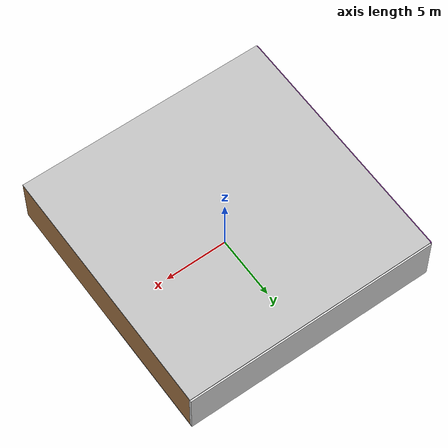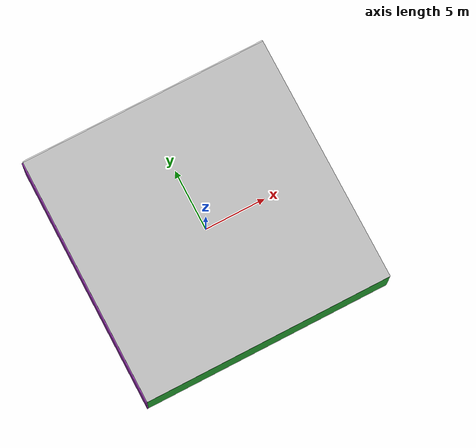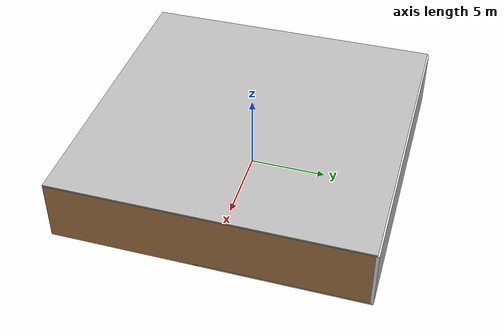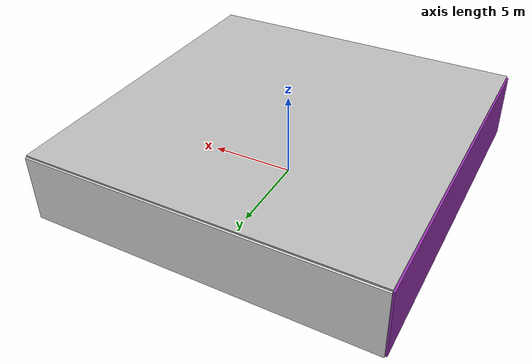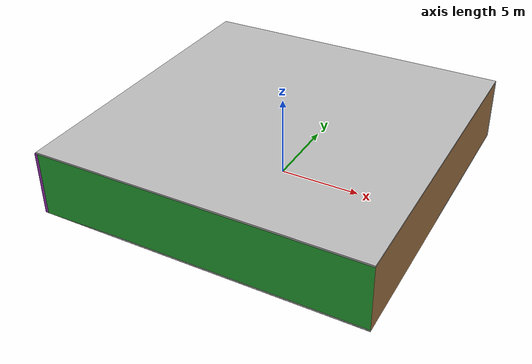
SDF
<sdf version="1.4">
 <world name="default">
  <physics type="ode">
   <max_step_size>0.001</max_step_size>
   <real_time_factor>1</real_time_factor>
   <real_time_update_rate>1000</real_time_update_rate>
   <gravity>0 0 -9.8</gravity>
  </physics>
  <scene><ambient>0.4 0.4 0.4 1</ambient><background>0.7 0.7 0.7 1</background><shadows>1</shadows></scene>
  <model name="Surrounding">
   <static>1</static>
   <link name="Ceiling">
    <collision name="Ceiling_Collision"><geometry><box><size>20 20 0.1</size></box></geometry></collision>
    <visual name="Ceiling_Visual">
     <geometry><box><size>20 20 0.1</size></box></geometry>
     <material>
      <script><uri>file://media/materials/scripts/gazebo.material</uri><name>Gazebo/JointAnchor</name></script>
     </material>
    </visual>
    <pose>0 0 4.05 0 0 0</pose>
   </link>
   <link name="Wall_South">
    <collision name="Wall_South_Collision">
     <geometry><box><size>20 0 4</size></box></geometry>
     <pose>0 0 2 0 -0 0</pose>
    </collision>
    <visual name="Wall_South_Visual">
     <pose>0 0 2 0 -0 0</pose>
     <geometry><box><size>20 0 4</size></box></geometry>
     <material>
      <script><uri>file://media/materials/scripts/gazebo.material</uri><name>Gazebo/Green</name></script>
     </material>
    </visual>
    <velocity_decay><linear>0</linear><angular>0</angular></velocity_decay>
    <pose>0 -10 0 0 -0 0</pose>
   </link>
   <link name="Wall_East">
    <collision name="Wall_21_Collision">
     <geometry><box><size>20 0 4</size></box></geometry>
     <pose>0 0 2 0 -0 0</pose>
    </collision>
    <visual name="Wall_21_Visual">
     <pose>0 0 2 0 -0 0</pose>
     <geometry><box><size>20 0 4</size></box></geometry>
     <material>
      <script><uri>file://media/materials/scripts/gazebo.material</uri><name>Gazebo/Wood</name></script>
     </material>
    </visual>
    <velocity_decay><linear>0</linear><angular>0</angular></velocity_decay>
    <pose>10 0 0 0 -0 1.5708</pose>
   </link>
   <link name="Wall_North">
    <collision name="Wall_22_Collision">
     <geometry><box><size>20 0.2 4</size></box></geometry>
     <pose>0 0 2 0 -0 0</pose>
    </collision>
    <visual name="Wall_22_Visual">
     <pose>0 0 2 0 -0 0</pose>
     <geometry><box><size>20 0.2 4</size></box></geometry>
     <material>
      <script><uri>file://media/materials/scripts/gazebo.material</uri><name>Gazebo/White</name></script>
     </material>
    </visual>
    <velocity_decay><linear>0</linear><angular>0</angular></velocity_decay>
    <pose>0 10 0 0 -0 0</pose>
   </link>
   <link name="Wall_West">
    <collision name="Wall_23_Collision">
     <geometry><box><size>20 0.2 4</size></box></geometry>
     <pose>0 0 2 0 -0 0</pose>
    </collision>
    <visual name="Wall_23_Visual">
     <pose>0 0 2 0 -0 0</pose>
     <geometry><box><size>20 0.2 4</size></box></geometry>
     <material>
      <script><uri>file://media/materials/scripts/gazebo.material</uri><name>Gazebo/Purple</name></script>
     </material>
    </visual>
    <velocity_decay><linear>0</linear><angular>0</angular></velocity_decay>
    <pose>-10 0 0 0 0 -1.5708</pose>
   </link>
   <link name="Ground_link">
    <collision name="collision">
     <pose>0 0 .05 0 -0 0</pose>
     <geometry><box><size>20 20 0.1</size></box></geometry>
    </collision>
    <visual name="visual">
     <pose>0 0 .05 0 -0 0</pose>
     <geometry><box><size>20 20 0.1</size></box></geometry>
     <material>
      <script><uri>file://media/materials/scripts/gazebo.material</uri><name>Gazebo/JointAnchor</name></script>
     </material>
    </visual>
   </link>
   <static>1</static>
  </model>
  <spherical_coordinates>
   <surface_model>EARTH_WGS84</surface_model>
   <latitude_deg>0</latitude_deg>
   <longitude_deg>0</longitude_deg>
   <elevation>0</elevation>
   <heading_deg>0</heading_deg>
  </spherical_coordinates>
  <light name="lightball_0" type="diffuse">
   <diffuse>0.8 0.8 0.8 1</diffuse>
   <specular>0.2 0.2 0.2 1</specular>
   <attenuation>
    <range>100</range>
    <constant>0.7</constant>
    <linear>0.01</linear>
    <quadratic>0.001</quadratic>
   </attenuation>
   <direction>-0.5 0.1 -0.9</direction>
   <pose>-1.41606639781 1.06152080435 1.14601231082 0 0 0</pose>
  </light>
  <light name="lightball_1" type="diffuse">
   <diffuse>0.8 0.8 0.8 1</diffuse>
   <specular>0.2 0.2 0.2 1</specular>
   <attenuation>
    <range>100</range>
    <constant>0.7</constant>
    <linear>0.01</linear>
    <quadratic>0.001</quadratic>
   </attenuation>
   <direction>-0.5 0.1 -0.9</direction>
   <pose>-3.29293919716 9.99536786271 2.25200923701 0 0 0</pose>
  </light>
  <light name="lightball_2" type="diffuse">
   <diffuse>0.8 0.8 0.8 1</diffuse>
   <specular>0.2 0.2 0.2 1</specular>
   <attenuation>
    <range>100</range>
    <constant>0.7</constant>
    <linear>0.01</linear>
    <quadratic>0.001</quadratic>
   </attenuation>
   <direction>-0.5 0.1 -0.9</direction>
   <pose>-1.68665808027 -1.77604065994 0.847257331104 0 0 0</pose>
  </light>
  <light name="lightball_3" type="diffuse">
   <diffuse>0.8 0.8 0.8 1</diffuse>
   <specular>0.2 0.2 0.2 1</specular>
   <attenuation>
    <range>100</range>
    <constant>0.7</constant>
    <linear>0.01</linear>
    <quadratic>0.001</quadratic>
   </attenuation>
   <direction>-0.5 0.1 -0.9</direction>
   <pose>4.16908392908 1.55869762467 2.99426584979 0 0 0</pose>
  </light>
  <light name="lightball_4" type="diffuse">
   <diffuse>0.8 0.8 0.8 1</diffuse>
   <specular>0.2 0.2 0.2 1</specular>
   <attenuation>
    <range>100</range>
    <constant>0.7</constant>
    <linear>0.01</linear>
    <quadratic>0.001</quadratic>
   </attenuation>
   <direction>-0.5 0.1 -0.9</direction>
   <pose>-4.06244722798 -8.93843506843 1.03178399602 0 0 0</pose>
  </light>
  <light name="lightball_5" type="diffuse">
   <diffuse>0.8 0.8 0.8 1</diffuse>
   <specular>0.2 0.2 0.2 1</specular>
   <attenuation>
    <range>100</range>
    <constant>0.7</constant>
    <linear>0.01</linear>
    <quadratic>0.001</quadratic>
   </attenuation>
   <direction>-0.5 0.1 -0.9</direction>
   <pose>-0.553052160941 8.1739300108 1.40095049936 0 0 0</pose>
  </light>
  <light name="lightball_6" type="diffuse">
   <diffuse>0.8 0.8 0.8 1</diffuse>
   <specular>0.2 0.2 0.2 1</specular>
   <attenuation>
    <range>100</range>
    <constant>0.7</constant>
    <linear>0.01</linear>
    <quadratic>0.001</quadratic>
   </attenuation>
   <direction>-0.5 0.1 -0.9</direction>
   <pose>3.96394285085 -0.16955552041 2.11760271023 0 0 0</pose>
  </light>
  <light name="lightball_7" type="diffuse">
   <diffuse>0.8 0.8 0.8 1</diffuse>
   <specular>0.2 0.2 0.2 1</specular>
   <attenuation>
    <range>100</range>
    <constant>0.7</constant>
    <linear>0.01</linear>
    <quadratic>0.001</quadratic>
   </attenuation>
   <direction>-0.5 0.1 -0.9</direction>
   <pose>0.89469959637 -8.7292750096 2.71045069942 0 0 0</pose>
  </light>
  <light name="lightball_8" type="diffuse">
   <diffuse>0.8 0.8 0.8 1</diffuse>
   <specular>0.2 0.2 0.2 1</specular>
   <attenuation>
    <range>100</range>
    <constant>0.7</constant>
    <linear>0.01</linear>
    <quadratic>0.001</quadratic>
   </attenuation>
   <direction>-0.5 0.1 -0.9</direction>
   <pose>-2.93259033414 2.74405306902 1.62265416391 0 0 0</pose>
  </light>
  <light name="lightball_9" type="diffuse">
   <diffuse>0.8 0.8 0.8 1</diffuse>
   <specular>0.2 0.2 0.2 1</specular>
   <attenuation>
    <range>100</range>
    <constant>0.7</constant>
    <linear>0.01</linear>
    <quadratic>0.001</quadratic>
   </attenuation>
   <direction>-0.5 0.1 -0.9</direction>
   <pose>8.4313426033 -9.77322476062 2.7869657276 0 0 0</pose>
  </light>
  <light name="lightball_10" type="diffuse">
   <diffuse>0.8 0.8 0.8 1</diffuse>
   <specular>0.2 0.2 0.2 1</specular>
   <attenuation>
    <range>100</range>
    <constant>0.7</constant>
    <linear>0.01</linear>
    <quadratic>0.001</quadratic>
   </attenuation>
   <direction>-0.5 0.1 -0.9</direction>
   <pose>-6.23884763043 -9.00354415151 1.06100270972 0 0 0</pose>
  </light>
  <light name="lightball_11" type="diffuse">
   <diffuse>0.8 0.8 0.8 1</diffuse>
   <specular>0.2 0.2 0.2 1</specular>
   <attenuation>
    <range>100</range>
    <constant>0.7</constant>
    <linear>0.01</linear>
    <quadratic>0.001</quadratic>
   </attenuation>
   <direction>-0.5 0.1 -0.9</direction>
   <pose>-1.78190015263 7.41667372129 2.35987358632 0 0 0</pose>
  </light>
  <light name="lightball_12" type="diffuse">
   <diffuse>0.8 0.8 0.8 1</diffuse>
   <specular>0.2 0.2 0.2 1</specular>
   <attenuation>
    <range>100</range>
    <constant>0.7</constant>
    <linear>0.01</linear>
    <quadratic>0.001</quadratic>
   </attenuation>
   <direction>-0.5 0.1 -0.9</direction>
   <pose>9.65774477305 1.5409642914 3.56039585749 0 0 0</pose>
  </light>
  <include>
   <uri>model://robocup_3Dsim_goal</uri>
   <pose>-8.09182480473 -6.89117131608 0 0 0 2.47394327043</pose>
  </include>
  <include><uri>model://table</uri><pose>-7.7100097285 5.22318646012 0 0 0 0.310061133683</pose></include>
  <include>
   <uri>model://textured_shapes</uri>
   <pose>-0.345799730983 -3.59118144949 0 0 0 1.66478315863</pose>
  </include>
  <include>
   <uri>model://construction_cone</uri>
   <pose>-2.51767001446 7.38733069003 0 0 0 2.8801424874</pose>
  </include>
 </world>
</sdf>

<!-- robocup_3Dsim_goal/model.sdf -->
<sdf version="1.5">
  <model name="robocup_3d_goal">
    <static>true</static>
    <link name="left_post">
      <pose>0 1.05 0.45 0 0 0</pose>
      <collision name="collision">
        <geometry>
          <cylinder>
            <radius>0.05</radius>
            <length>0.9</length>
          </cylinder>
        </geometry>
      </collision>
      <visual name="visual">
        <geometry>
          <cylinder>
            <radius>0.05</radius>
            <length>0.9</length>
          </cylinder>
        </geometry>
        <material>
          <script>
            <uri>file://media/materials/scripts/gazebo.material</uri>
            <name>Gazebo/ZincYellow</name>
          </script>
        </material>
      </visual>
    </link>
    <link name="left_support_horiz_lower">
      <pose>0.30 1.05 0.01 0 0 0</pose>
      <collision name="collision">
        <geometry>
          <box>
            <size>0.50 0.02 0.02</size>
          </box>
        </geometry>
      </collision>
      <visual name="visual">
        <geometry>
          <box>
            <size>0.50 0.02 0.02</size>
          </box>
        </geometry>
        <material>
          <script>
            <uri>file://media/materials/scripts/gazebo.material</uri>
            <name>Gazebo/White</name>
          </script>
        </material>
      </visual>
    </link>
    <link name="left_support_horiz_upper">
      <pose>0.30 1.05 0.79 0 0 0</pose>
      <collision name="collision">
        <geometry>
          <box>
            <size>0.50 0.02 0.02</size>
          </box>
        </geometry>
      </collision>
      <visual name="visual">
        <geometry>
          <box>
            <size>0.50 0.02 0.02</size>
          </box>
        </geometry>
        <material>
          <script>
            <uri>file://media/materials/scripts/gazebo.material</uri>
            <name>Gazebo/White</name>
          </script>
        </material>
      </visual>
    </link>
    <link name="left_support_vertical">
      <pose>0.56 1.05 0.4 0 1.5708 0</pose>
      <collision name="collision">
        <geometry>
          <box>
            <size>0.80 0.02 0.02</size>
          </box>
        </geometry>
      </collision>
      <visual name="visual">
        <geometry>
          <box>
            <size>0.80 0.02 0.02</size>
          </box>
        </geometry>
        <material>
          <script>
            <uri>file://media/materials/scripts/gazebo.material</uri>
            <name>Gazebo/White</name>
          </script>
        </material>
      </visual>
    </link>
    <link name="right_support_horiz_lower">
      <pose>0.30 -1.05 0.01 0 0 0</pose>
      <collision name="collision">
        <geometry>
          <box>
            <size>0.50 0.02 0.02</size>
          </box>
        </geometry>
      </collision>
      <visual name="visual">
        <geometry>
          <box>
            <size>0.50 0.02 0.02</size>
          </box>
        </geometry>
        <material>
          <script>
            <uri>file://media/materials/scripts/gazebo.material</uri>
            <name>Gazebo/White</name>
          </script>
        </material>
      </visual>
    </link>
    <link name="right_support_horiz_upper">
      <pose>0.30 -1.05 0.79 0 0 0</pose>
      <collision name="collision">
        <geometry>
          <box>
            <size>0.50 0.02 0.02</size>
          </box>
        </geometry>
      </collision>
      <visual name="visual">
        <geometry>
          <box>
            <size>0.50 0.02 0.02</size>
          </box>
        </geometry>
        <material>
          <script>
            <uri>file://media/materials/scripts/gazebo.material</uri>
            <name>Gazebo/White</name>
          </script>
        </material>
      </visual>
    </link>
    <link name="right_support_vertical">
      <pose>0.56 -1.05 0.4 0 1.5708 0</pose>
      <collision name="collision">
        <geometry>
          <box>
            <size>0.80 0.02 0.02</size>
          </box>
        </geometry>
      </collision>
      <visual name="visual">
        <geometry>
          <box>
            <size>0.80 0.02 0.02</size>
          </box>
        </geometry>
        <material>
          <script>
            <uri>file://media/materials/scripts/gazebo.material</uri>
            <name>Gazebo/White</name>
          </script>
        </material>
      </visual>
    </link>
    <link name="center_support_horiz_lower">
      <pose>0.56 0 0.01 0 1.5708 0</pose>
      <collision name="collision">
        <geometry>
          <box>
            <size>0.02 2.08 0.02</size>
          </box>
        </geometry>
      </collision>
      <visual name="visual">
        <geometry>
          <box>
            <size>0.02 2.08 0.02</size>
          </box>
        </geometry>
        <material>
          <script>
            <uri>file://media/materials/scripts/gazebo.material</uri>
            <name>Gazebo/White</name>
          </script>
        </material>
      </visual>
    </link>
    <link name="center_support_horiz_upper">
      <pose>0.56 0 0.79 0 1.5708 0</pose>
      <collision name="collision">
        <geometry>
          <box>
            <size>0.02 2.08 0.02</size>
          </box>
        </geometry>
      </collision>
      <visual name="visual">
        <geometry>
          <box>
            <size>0.02 2.08 0.02</size>
          </box>
        </geometry>
        <material>
          <script>
            <uri>file://media/materials/scripts/gazebo.material</uri>
            <name>Gazebo/White</name>
          </script>
        </material>
      </visual>
    </link>
    <link name="right_post">
      <pose>0 -1.05 0.45 0 0 0</pose>
      <collision name="collision">
        <geometry>
          <cylinder>
            <radius>0.05</radius>
            <length>0.9</length>
          </cylinder>
        </geometry>
      </collision>
      <visual name="visual">
        <geometry>
          <cylinder>
            <radius>0.05</radius>
            <length>0.9</length>
          </cylinder>
        </geometry>
        <material>
          <script>
            <uri>file://media/materials/scripts/gazebo.material</uri>
            <name>Gazebo/ZincYellow</name>
          </script>
        </material>
      </visual>
    </link>
    <link name="crossbar">
      <pose>0 0 0.85 1.57 1.57 0</pose>
      <collision name="collision">
        <geometry>
          <cylinder>
            <radius>0.05</radius>
            <length>2.0</length>
          </cylinder>
        </geometry>
      </collision>
      <visual name="visual">
        <geometry>
          <cylinder>
            <radius>0.05</radius>
            <length>2.0</length>
          </cylinder>
        </geometry>
        <material>
          <script>
            <uri>file://media/materials/scripts/gazebo.material</uri>
            <name>Gazebo/ZincYellow</name>
          </script>
        </material>
      </visual>
    </link>
    <link name="center_net">
      <pose>0.56 0 0.40 0 0 0</pose>
      <collision name="collision">
        <geometry>
          <box>
            <size>0.01 2.1 0.80</size>
          </box>
        </geometry>
      </collision>
      <visual name="visual">
        <geometry>
          <box>
            <size>0.01 2.1 0.80</size>
          </box>
        </geometry>
        <material>
          <script>
            <uri>model://../model_source/models/robocup09_spl_field/materials/scripts/</uri>
            <uri>model://../model_source/models/robocup09_spl_field/materials/textures/</uri>
            <name>RoboCup/Net</name>
          </script>
        </material>
      </visual>
    </link>
    <link name="left_net">
      <pose>0.30 1.05 0.40 0 0 0</pose>
      <collision name="collision">
        <geometry>
          <box>
            <size>0.50 0.01 0.76</size>
          </box>
        </geometry>
      </collision>
      <visual name="visual">
        <geometry>
          <box>
            <size>0.50 0.01 0.76</size>
          </box>
        </geometry>
        <material>
          <script>
            <uri>model://../model_source/models/robocup09_spl_field/materials/scripts/</uri>
            <uri>model://../model_source/models/robocup09_spl_field/materials/textures/</uri>
            <name>RoboCup/Net</name>
          </script>
        </material>
      </visual>
    </link>
    <link name="right_net">
      <pose>0.30 -1.05 0.40 0 0 0</pose>
      <collision name="collision">
        <geometry>
          <box>
            <size>0.50 0.01 0.76</size>
          </box>
        </geometry>
      </collision>
      <visual name="visual">
        <geometry>
          <box>
            <size>0.50 0.01 0.76</size>
          </box>
        </geometry>
        <material>
          <script>
            <uri>model://../model_source/models/robocup09_spl_field/materials/scripts/</uri>
            <uri>model://../model_source/models/robocup09_spl_field/materials/textures/</uri>
            <name>RoboCup/Net</name>
          </script>
        </material>
      </visual>
    </link>
  </model>
</sdf>

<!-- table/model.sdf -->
<sdf version="1.5">
  <model name="table">
    <static>true</static>
    <link name="link">
      <collision name="surface">
        <pose>0 0 1.0 0 0 0</pose>
        <geometry>
          <box>
            <size>1.5 0.8 0.03</size>
          </box>
        </geometry>
        <surface>
          <friction>
            <ode>
              <mu>0.6</mu>
              <mu2>0.6</mu2>
            </ode>
          </friction>
        </surface>
      </collision>
      <visual name="visual1">
        <pose>0 0 1.0 0 0 0</pose>
        <geometry>
          <box>
            <size>1.5 0.8 0.03</size>
          </box>
        </geometry>
        <material>
          <script>
            <uri>model://media/materials/scripts/gazebo.material</uri>
            <name>Gazebo/Wood</name>
          </script>
        </material>
      </visual>
      <collision name="front_left_leg">
        <pose>0.68 0.38 0.5 0 0 0</pose>
        <geometry>
          <cylinder>
            <radius>0.02</radius>
            <length>1.0</length>
          </cylinder>
        </geometry>
      </collision>
      <visual name="front_left_leg">
        <pose>0.68 0.38 0.5 0 0 0</pose>
        <geometry>
          <cylinder>
            <radius>0.02</radius>
            <length>1.0</length>
          </cylinder>
        </geometry>
        <material>
          <script>
            <uri>model://media/materials/scripts/gazebo.material</uri>
            <name>Gazebo/Grey</name>
          </script>
        </material>
      </visual>
      <collision name="front_right_leg">
        <pose>0.68 -0.38 0.5 0 0 0</pose>
        <geometry>
          <cylinder>
            <radius>0.02</radius>
            <length>1.0</length>
          </cylinder>
        </geometry>
      </collision>
      <visual name="front_right_leg">
        <pose>0.68 -0.38 0.5 0 0 0</pose>
        <geometry>
          <cylinder>
            <radius>0.02</radius>
            <length>1.0</length>
          </cylinder>
        </geometry>
        <material>
          <script>
            <uri>model://media/materials/scripts/gazebo.material</uri>
            <name>Gazebo/Grey</name>
          </script>
        </material>
      </visual>
      <collision name="back_right_leg">
        <pose>-0.68 -0.38 0.5 0 0 0</pose>
        <geometry>
          <cylinder>
            <radius>0.02</radius>
            <length>1.0</length>
          </cylinder>
        </geometry>
      </collision>
      <visual name="back_right_leg">
        <pose>-0.68 -0.38 0.5 0 0 0</pose>
        <geometry>
          <cylinder>
            <radius>0.02</radius>
            <length>1.0</length>
          </cylinder>
        </geometry>
        <material>
          <script>
            <uri>model://media/materials/scripts/gazebo.material</uri>
            <name>Gazebo/Grey</name>
          </script>
        </material>
      </visual>
      <collision name="back_left_leg">
        <pose>-0.68 0.38 0.5 0 0 0</pose>
        <geometry>
          <cylinder>
            <radius>0.02</radius>
            <length>1.0</length>
          </cylinder>
        </geometry>
      </collision>
      <visual name="back_left_leg">
        <pose>-0.68 0.38 0.5 0 0 0</pose>
        <geometry>
          <cylinder>
            <radius>0.02</radius>
            <length>1.0</length>
          </cylinder>
        </geometry>
        <material>
          <script>
            <uri>model://media/materials/scripts/gazebo.material</uri>
            <name>Gazebo/Grey</name>
          </script>
        </material>
      </visual>
    </link>
  </model>
</sdf>

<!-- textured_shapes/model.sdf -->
<sdf version="1.6">
  <model name="textured_shapes">
    <pose>0 0 0.5 0 0 0</pose>
    <link name="box">
      <pose>0 -1.5 0 0 0 0</pose>
      <collision name="collision">
        <geometry>
          <box>
            <size>1 1 1</size>
          </box>
        </geometry>
      </collision>
      <visual name="visual">
        <geometry>
          <box>
            <size>1 1 1</size>
          </box>
        </geometry>
        <material>
          <script>
            <uri>model://../model_source/models/textured_shapes/materials/scripts</uri>
            <uri>model://../model_source/models/textured_shapes/materials/textures</uri>
            <name>TexturedShape/Squares</name>
          </script>
        </material>
      </visual>
    </link>
    <link name="sphere">
      <collision name="collision">
        <geometry>
          <sphere>
            <radius>0.5</radius>
          </sphere>
        </geometry>
      </collision>
      <visual name="visual">
        <geometry>
          <sphere>
            <radius>0.5</radius>
          </sphere>
        </geometry>
        <material>
          <script>
            <uri>model://../model_source/models/textured_shapes/materials/scripts</uri>
            <uri>model://../model_source/models/textured_shapes/materials/textures</uri>
            <name>TexturedShape/Squares</name>
          </script>
        </material>
      </visual>
    </link>
    <link name="cylinder">
      <pose>0 1.5 0 0 0 0</pose>
      <collision name="collision">
        <geometry>
          <cylinder>
            <radius>0.5</radius>
            <length>1</length>
          </cylinder>
        </geometry>
      </collision>
      <visual name="visual">
        <geometry>
          <cylinder>
            <radius>0.5</radius>
            <length>1</length>
          </cylinder>
        </geometry>
        <material>
          <script>
            <uri>model://../model_source/models/textured_shapes/materials/scripts</uri>
            <uri>model://../model_source/models/textured_shapes/materials/textures</uri>
            <name>TexturedShape/Squares</name>
          </script>
        </material>
      </visual>
    </link>
  </model>
</sdf>

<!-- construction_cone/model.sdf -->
<sdf version="1.5">
  <model name="Construction Cone">
    <link name="link">
      <collision name="collision">
        <geometry>
          <mesh>
            <scale>10 10 10</scale>
            <uri>file://isr-testbed/construction_cone/meshes/construction_cone.dae</uri>
          </mesh>
        </geometry>
      </collision>
      <visual name="visual">
        <geometry>
          <mesh>
            <scale>10 10 10</scale>
            <uri>file://isr-testbed/construction_cone/meshes/construction_cone.dae</uri>
          </mesh>
        </geometry>
      </visual>
    </link>
  </model>
</sdf>
